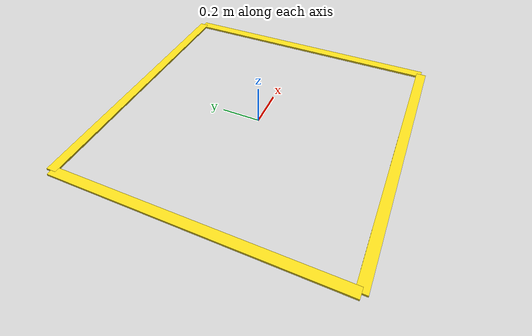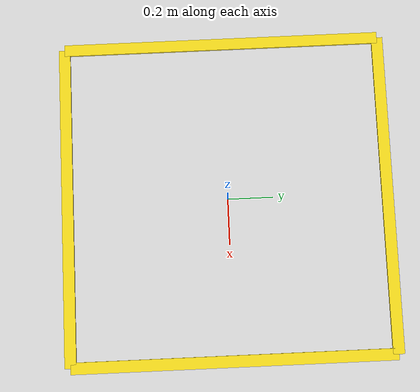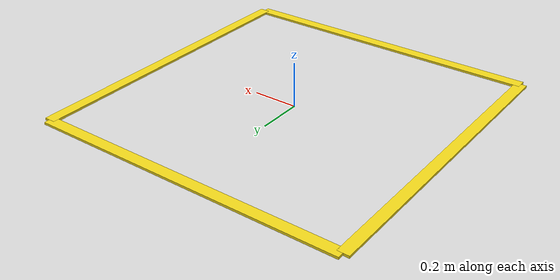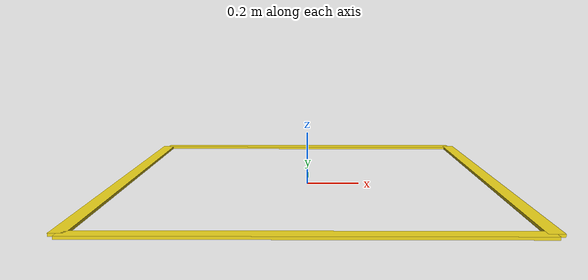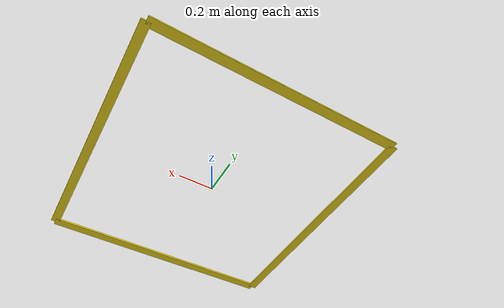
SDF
<?xml version="1.0"?>
<sdf version="1.9">
  <model name="sauvc_starting_zone">
    <static>true</static>
    <plugin filename="gz-sim-label-system" name="gz::sim::systems::Label">
      <label>10</label>
    </plugin>
    <link name="edge_north">
      <pose>0.7 0 0.02 0 0 0</pose>
      <inertial>
        <pose>0 0 0 0 0 0</pose>
        <mass>0.1</mass>
        <inertia>
          <ixx>0.0163342</ixx><ixy>0</ixy><ixz>0</ixz>
          <iyy>2.16667e-05</iyy><iyz>0</iyz>
          <izz>0.0163542</izz>
        </inertia>
      </inertial>
      <visual name="edge_north_visual">
        <pose>0 0 0 0 0 0</pose>
        <cast_shadows>false</cast_shadows>
        <geometry><box><size>0.05 1.4 0.01</size></box></geometry>
        <material>
          <ambient>0.95 0.85 0.1 1</ambient>
          <diffuse>0.95 0.85 0.1 1</diffuse>
          <specular>0.06 0.06 0.06 1</specular>
          <emissive>0.22 0.22 0.22 1</emissive>
          <pbr>
            <metal>
              <albedo_map>model://sauvc_textures/albedo_fabric.png</albedo_map>
              <metalness>0.0</metalness>
              <roughness_map>model://sauvc_textures/rough_fabric.png</roughness_map>
              <normal_map>model://sauvc_textures/norm_fabric.png</normal_map>
            </metal>
          </pbr>
        </material>
      </visual>
    </link>
    <link name="edge_south">
      <pose>-0.7 0 0.02 0 0 0</pose>
      <inertial>
        <pose>0 0 0 0 0 0</pose>
        <mass>0.1</mass>
        <inertia>
          <ixx>0.0163342</ixx><ixy>0</ixy><ixz>0</ixz>
          <iyy>2.16667e-05</iyy><iyz>0</iyz>
          <izz>0.0163542</izz>
        </inertia>
      </inertial>
      <visual name="edge_south_visual">
        <pose>0 0 0 0 0 0</pose>
        <cast_shadows>false</cast_shadows>
        <geometry><box><size>0.05 1.4 0.01</size></box></geometry>
        <material>
          <ambient>0.95 0.85 0.1 1</ambient>
          <diffuse>0.95 0.85 0.1 1</diffuse>
          <specular>0.06 0.06 0.06 1</specular>
          <emissive>0.22 0.22 0.22 1</emissive>
          <pbr>
            <metal>
              <albedo_map>model://sauvc_textures/albedo_fabric.png</albedo_map>
              <metalness>0.0</metalness>
              <roughness_map>model://sauvc_textures/rough_fabric.png</roughness_map>
              <normal_map>model://sauvc_textures/norm_fabric.png</normal_map>
            </metal>
          </pbr>
        </material>
      </visual>
    </link>
    <link name="edge_east">
      <pose>0 -0.7 0.02 0 0 0</pose>
      <inertial>
        <pose>0 0 0 0 0 0</pose>
        <mass>0.1</mass>
        <inertia>
          <ixx>2.16667e-05</ixx><ixy>0</ixy><ixz>0</ixz>
          <iyy>0.0163342</iyy><iyz>0</iyz>
          <izz>0.0163542</izz>
        </inertia>
      </inertial>
      <visual name="edge_east_visual">
        <pose>0 0 0 0 0 0</pose>
        <cast_shadows>false</cast_shadows>
        <geometry><box><size>1.4 0.05 0.01</size></box></geometry>
        <material>
          <ambient>0.95 0.85 0.1 1</ambient>
          <diffuse>0.95 0.85 0.1 1</diffuse>
          <specular>0.06 0.06 0.06 1</specular>
          <emissive>0.22 0.22 0.22 1</emissive>
          <pbr>
            <metal>
              <albedo_map>model://sauvc_textures/albedo_fabric.png</albedo_map>
              <metalness>0.0</metalness>
              <roughness_map>model://sauvc_textures/rough_fabric.png</roughness_map>
              <normal_map>model://sauvc_textures/norm_fabric.png</normal_map>
            </metal>
          </pbr>
        </material>
      </visual>
    </link>
    <link name="edge_west">
      <pose>0 0.7 0.02 0 0 0</pose>
      <inertial>
        <pose>0 0 0 0 0 0</pose>
        <mass>0.1</mass>
        <inertia>
          <ixx>2.16667e-05</ixx><ixy>0</ixy><ixz>0</ixz>
          <iyy>0.0163342</iyy><iyz>0</iyz>
          <izz>0.0163542</izz>
        </inertia>
      </inertial>
      <visual name="edge_west_visual">
        <pose>0 0 0 0 0 0</pose>
        <cast_shadows>false</cast_shadows>
        <geometry><box><size>1.4 0.05 0.01</size></box></geometry>
        <material>
          <ambient>0.95 0.85 0.1 1</ambient>
          <diffuse>0.95 0.85 0.1 1</diffuse>
          <specular>0.06 0.06 0.06 1</specular>
          <emissive>0.22 0.22 0.22 1</emissive>
          <pbr>
            <metal>
              <albedo_map>model://sauvc_textures/albedo_fabric.png</albedo_map>
              <metalness>0.0</metalness>
              <roughness_map>model://sauvc_textures/rough_fabric.png</roughness_map>
              <normal_map>model://sauvc_textures/norm_fabric.png</normal_map>
            </metal>
          </pbr>
        </material>
      </visual>
    </link>
  </model>
</sdf>
